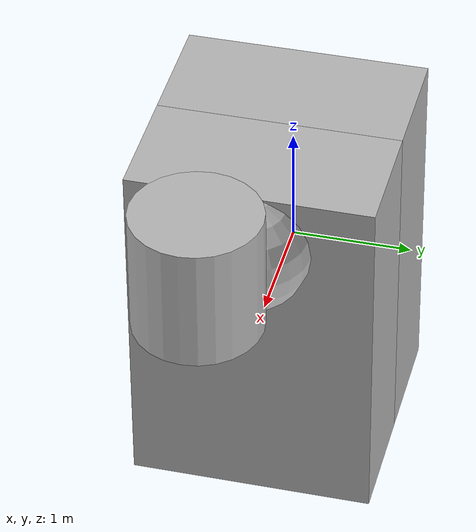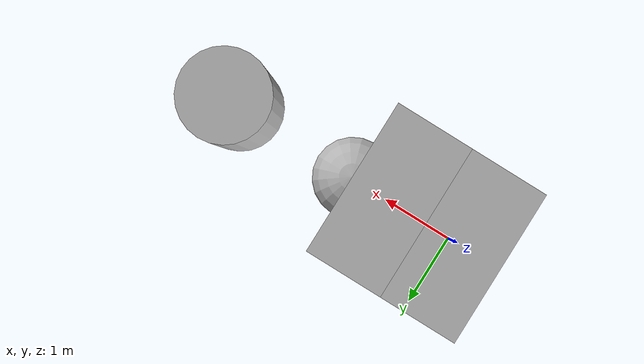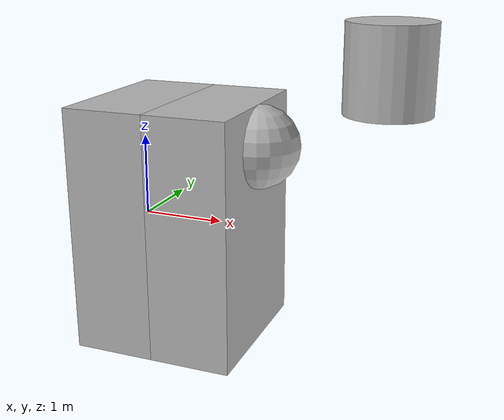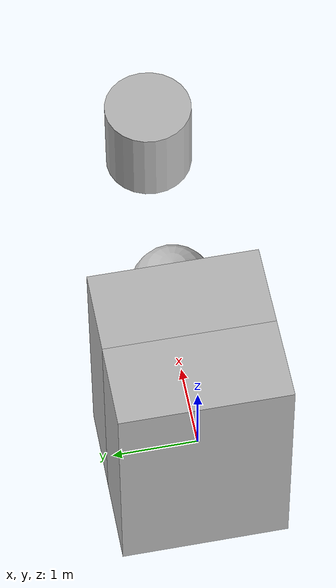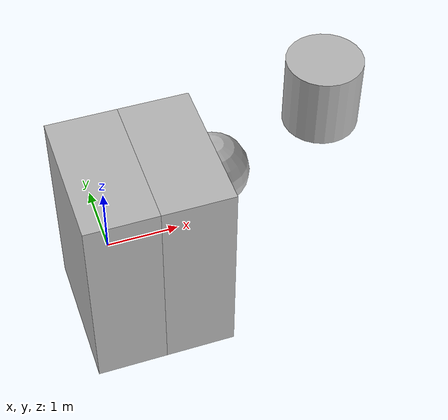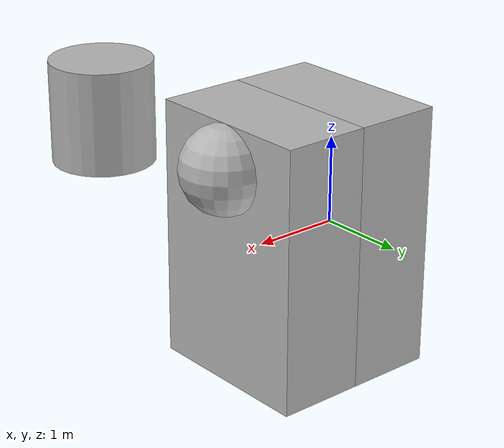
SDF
<?xml version="1.0"?>
<sdf version="1.6">
  <world name="default">
    <physics type="ode">
      <max_step_size>0.001</max_step_size>
      <real_time_factor>1</real_time_factor>
      <real_time_update_rate>1000</real_time_update_rate>
    </physics>
    <model name="some_model">
      <link name="some_link">
        <pose>0 0 0 0 0 0</pose>
        <collision name="some_collision">
          <geometry>
            <box>
              <size>1 2 3</size>
            </box>
          </geometry>
        </collision>
        <collision name="some_other_collision">
          <pose>1 0 0 0 0 0</pose>
          <geometry>
            <box>
              <size>1 2 3</size>
            </box>
          </geometry>
        </collision>
        <visual name="some_visual">
          <geometry>
            <box>
              <size>1 2 3</size>
            </box>
          </geometry>
        </visual>
        <visual name="some_other_visual">
          <pose>1 0 0 0 0 0</pose>
          <geometry>
            <box>
              <size>1 2 3</size>
            </box>
          </geometry>
        </visual>
        <inertial>
          <mass>5.0</mass>
          <inertia>
            <ixx>1.0</ixx>
            <ixy>2.0</ixy>
            <ixz>3.0</ixz>
            <iyy>0</iyy>
            <iyz>0</iyz>
            <izz>0</izz>
          </inertia>
        </inertial>
      </link>
      <link name="some_link_2">
        <pose>1.5 0 1 0 0 0</pose>
        <collision name="some_collision_2">
          <geometry>
            <sphere>
              <radius>0.5</radius>
            </sphere>
          </geometry>
        </collision>
        <visual name="some_visual">
          <geometry>
            <sphere>
              <radius>0.5</radius>
            </sphere>
          </geometry>
        </visual>
      </link>
      <link name="some_link_3">
        <pose>3 0 2 0 0 0</pose>
        <collision name="some_collision_3">
          <geometry>
            <cylinder>
              <radius>0.5</radius>
              <length>1.0</length>
            </cylinder>
          </geometry>
        </collision>
        <visual name="some_visual">
          <geometry>
            <cylinder>
              <radius>0.5</radius>
              <length>1.0</length>
            </cylinder>
          </geometry>
        </visual>
      </link>
    </model>
  </world>
</sdf>
